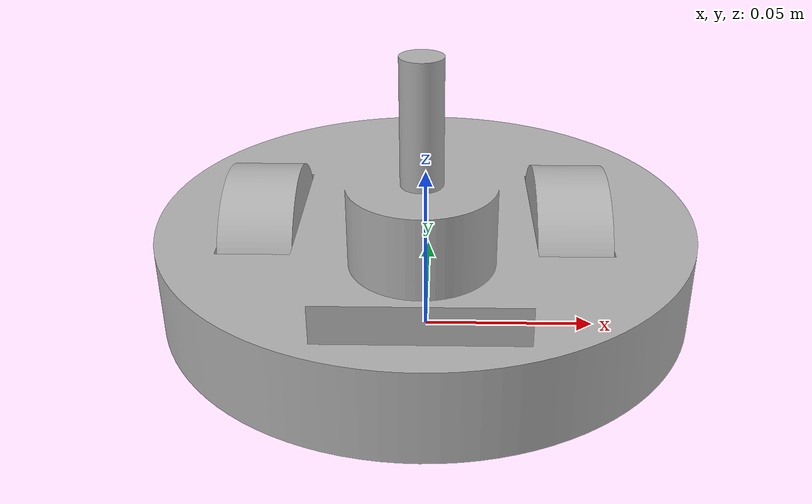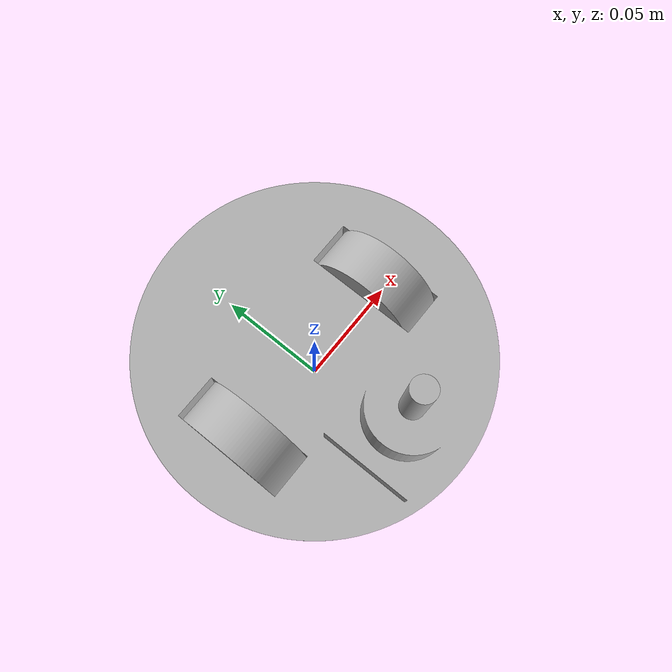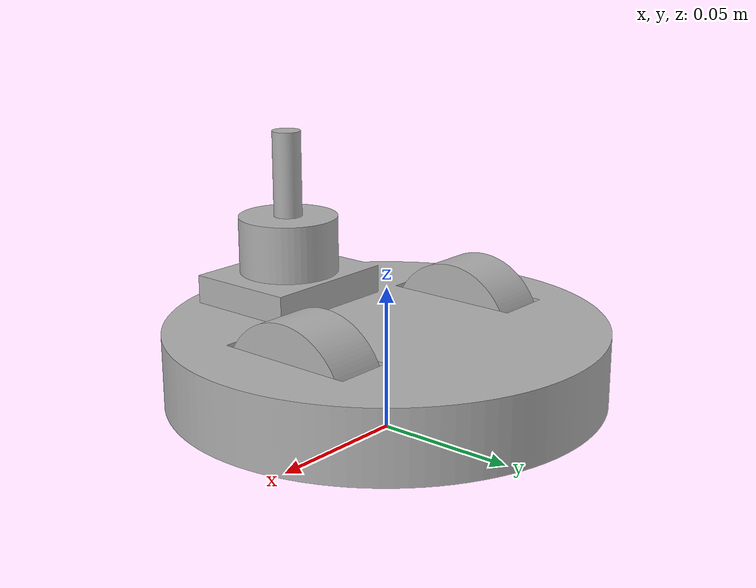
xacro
<?xml version="1.0" ?>
<robot name="finalrobot2_1100452" xmlns:xacro="http://www.ros.org/wiki/xacro">

<xacro:include filename="$(find finalrobot2_1100452_description)/urdf/materials.xacro" />
<xacro:include filename="$(find finalrobot2_1100452_description)/urdf/finalrobot2_1100452.trans" />
<xacro:include filename="$(find finalrobot2_1100452_description)/urdf/finalrobot2_1100452.gazebo" />
<link name="base_link">
  <inertial>
    <origin xyz="0.0002900038759478602 -0.004096946178674347 0.027262896271212162" rpy="0 0 0"/>
    <mass value="3.3835754670272715"/>
    <inertia ixx="0.005751" iyy="0.004553" izz="0.009591" ixy="-4e-06" iyz="0.000313" ixz="2e-06"/>
  </inertial>
  <visual>
    <origin xyz="0 0 0" rpy="0 0 0"/>
    <geometry>
      <mesh filename="package://finalrobot2_1100452_description/meshes/base_link.stl" scale="0.001 0.001 0.001"/>
    </geometry>
    <material name="silver"/>
  </visual>
  <collision>
    <origin xyz="0 0 0" rpy="0 0 0"/>
    <geometry>
      <mesh filename="package://finalrobot2_1100452_description/meshes/base_link.stl" scale="0.001 0.001 0.001"/>
    </geometry>
  </collision>
</link>

<link name="right_wheel_1">
  <inertial>
    <origin xyz="0.010000000000000002 -3.618764437576268e-18 -6.938893903907228e-18" rpy="0 0 0"/>
    <mass value="0.3082687791334984"/>
    <inertia ixx="9.6e-05" iyy="5.8e-05" izz="5.8e-05" ixy="-0.0" iyz="-0.0" ixz="0.0"/>
  </inertial>
  <visual>
    <origin xyz="-0.03 -0.0 -0.025" rpy="0 0 0"/>
    <geometry>
      <mesh filename="package://finalrobot2_1100452_description/meshes/right_wheel_1.stl" scale="0.001 0.001 0.001"/>
    </geometry>
    <material name="silver"/>
  </visual>
  <collision>
    <origin xyz="-0.03 -0.0 -0.025" rpy="0 0 0"/>
    <geometry>
      <mesh filename="package://finalrobot2_1100452_description/meshes/right_wheel_1.stl" scale="0.001 0.001 0.001"/>
    </geometry>
  </collision>
</link>

<link name="left_wheel_1">
  <inertial>
    <origin xyz="-0.009999999999999995 -3.618764437576268e-18 -6.938893903907228e-18" rpy="0 0 0"/>
    <mass value="0.3082687791334984"/>
    <inertia ixx="9.6e-05" iyy="5.8e-05" izz="5.8e-05" ixy="-0.0" iyz="-0.0" ixz="0.0"/>
  </inertial>
  <visual>
    <origin xyz="0.035 -0.0 -0.025" rpy="0 0 0"/>
    <geometry>
      <mesh filename="package://finalrobot2_1100452_description/meshes/left_wheel_1.stl" scale="0.001 0.001 0.001"/>
    </geometry>
    <material name="silver"/>
  </visual>
  <collision>
    <origin xyz="0.035 -0.0 -0.025" rpy="0 0 0"/>
    <geometry>
      <mesh filename="package://finalrobot2_1100452_description/meshes/left_wheel_1.stl" scale="0.001 0.001 0.001"/>
    </geometry>
  </collision>
</link>

<link name="lidar_1">
  <inertial>
    <origin xyz="5.228398398502882e-13 6.938893903907228e-18 0.015000000000000138" rpy="0 0 0"/>
    <mass value="0.018496126748009507"/>
    <inertia ixx="2e-06" iyy="2e-06" izz="0.0" ixy="0.0" iyz="0.0" ixz="0.0"/>
  </inertial>
  <visual>
    <origin xyz="-0.0 0.045 -0.0675" rpy="0 0 0"/>
    <geometry>
      <mesh filename="package://finalrobot2_1100452_description/meshes/lidar_1.stl" scale="0.001 0.001 0.001"/>
    </geometry>
    <material name="silver"/>
  </visual>
  <collision>
    <origin xyz="-0.0 0.045 -0.0675" rpy="0 0 0"/>
    <geometry>
      <mesh filename="package://finalrobot2_1100452_description/meshes/lidar_1.stl" scale="0.001 0.001 0.001"/>
    </geometry>
  </collision>
</link>

<joint name="Revolute 1" type="continuous">
  <origin xyz="0.03 0.0 0.025" rpy="0 0 0"/>
  <parent link="base_link"/>
  <child link="right_wheel_1"/>
  <axis xyz="0.0 -1.0 0.0"/>
</joint>

<joint name="Revolute 2" type="continuous">
  <origin xyz="-0.035 0.0 0.025" rpy="0 0 0"/>
  <parent link="base_link"/>
  <child link="left_wheel_1"/>
  <axis xyz="0.0 1.0 0.0"/>
</joint>

<joint name="Rigid 3" type="fixed">
  <origin xyz="0.0 -0.045 0.0675" rpy="0 0 0"/>
  <parent link="base_link"/>
  <child link="lidar_1"/>
</joint>

</robot>

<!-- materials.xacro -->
<robot name="finalrobot2_1100452" xmlns:xacro="http://www.ros.org/wiki/xacro" >

<material name="silver">
  <color rgba="0.700 0.700 0.700 1.000"/>
</material>

</robot>

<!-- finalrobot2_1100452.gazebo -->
<robot name="finalrobot2_1100452" xmlns:xacro="http://www.ros.org/wiki/xacro" >

<xacro:property name="body_color" value="Gazebo/Silver" />

<gazebo>
  <plugin name="control" filename="libgazebo_ros_control.so"/>
</gazebo>
<gazebo reference="base_link">
  <material>${body_color}</material>
  <mu1>0.2</mu1>
  <mu2>0.2</mu2>
  <selfCollide>true</selfCollide>
  <gravity>true</gravity>
</gazebo>

<gazebo reference="right_wheel_1">
  <material>${body_color}</material>
  <mu1>1500</mu1>
  <mu2>1500</mu2>
  <selfCollide>true</selfCollide>
</gazebo>

<gazebo reference="left_wheel_1">
  <material>${body_color}</material>
  <mu1>1500</mu1>
  <mu2>1500</mu2>
  <selfCollide>true</selfCollide>
</gazebo>

<gazebo reference="lidar_1">
  <material>${body_color}</material>
  <mu1>0.2</mu1>
  <mu2>0.2</mu2>
  <selfCollide>true</selfCollide>
</gazebo>

<gazebo>
  <plugin name="differential_drive_controller" filename="libgazebo_ros_diff_drive.so">

    <!-- Plugin update rate in Hz -->
    <updateRate>100</updateRate>

    <!-- Name of left joint, defaults to `left_joint` -->
    <leftJoint>Revolute 2</leftJoint>

    <!-- Name of right joint, defaults to `right_joint` -->
    <rightJoint>Revolute 1</rightJoint>

    <!-- The distance from the center of one wheel to the other, in meters, defaults to 0.34 m -->
    <wheelSeparation>0.2</wheelSeparation>

    <!-- Diameter of the wheels, in meters, defaults to 0.15 m -->
    <wheelDiameter>0.05</wheelDiameter>

    <!-- Wheel acceleration, in rad/s^2, defaults to 0.0 rad/s^2 -->
    <wheelAcceleration>1.0</wheelAcceleration>

    <!-- Maximum torque which the wheels can produce, in Nm, defaults to 5 Nm -->
    <wheelTorque>50</wheelTorque>

    <!-- Topic to receive geometry_msgs/Twist message commands, defaults to `cmd_vel` -->
    <commandTopic>cmd_vel</commandTopic>

    <!-- Topic to publish nav_msgs/Odometry messages, defaults to `odom` -->
    <odometryTopic>odom</odometryTopic>

    <!-- Odometry frame, defaults to `odom` -->
    <odometryFrame>odom</odometryFrame>

    <!-- Robot frame to calculate odometry from, defaults to `base_footprint` -->
    <robotBaseFrame>base_link</robotBaseFrame>

    <!-- Odometry source, 0 for ENCODER, 1 for WORLD, defaults to WORLD -->
    <odometrySource>1</odometrySource>

    <!-- Set to true to publish transforms for the wheel links, defaults to false -->
    <publishWheelTF>true</publishWheelTF>

    <!-- Set to true to publish transforms for the odometry, defaults to true -->
    <publishOdom>true</publishOdom>

    <!-- Set to true to publish sensor_msgs/JointState on /joint_states for the wheel joints, defaults to false -->
    <publishWheelJointState>true</publishWheelJointState>

    <!-- Set to true to swap right and left wheels, defaults to true -->
    <legacyMode>false</legacyMode>
  </plugin>
</gazebo>

</robot>
